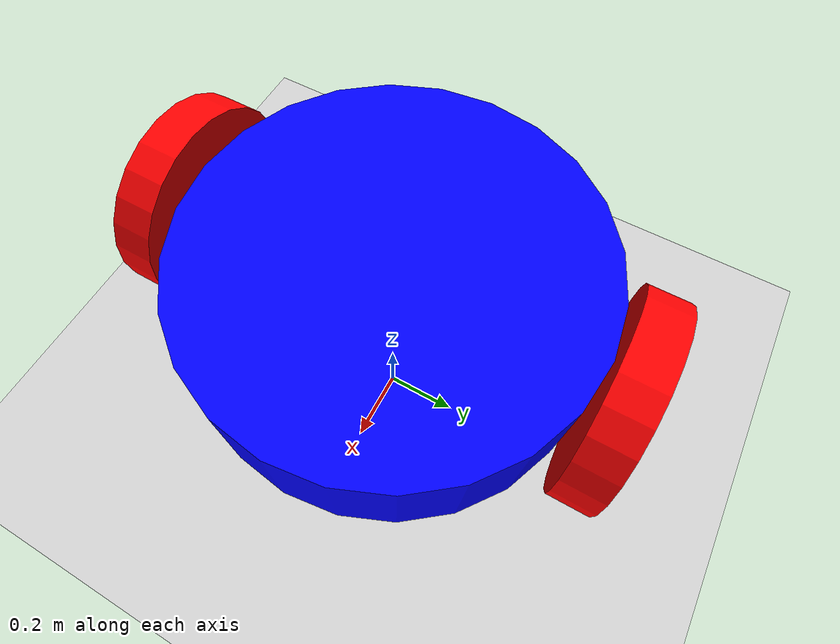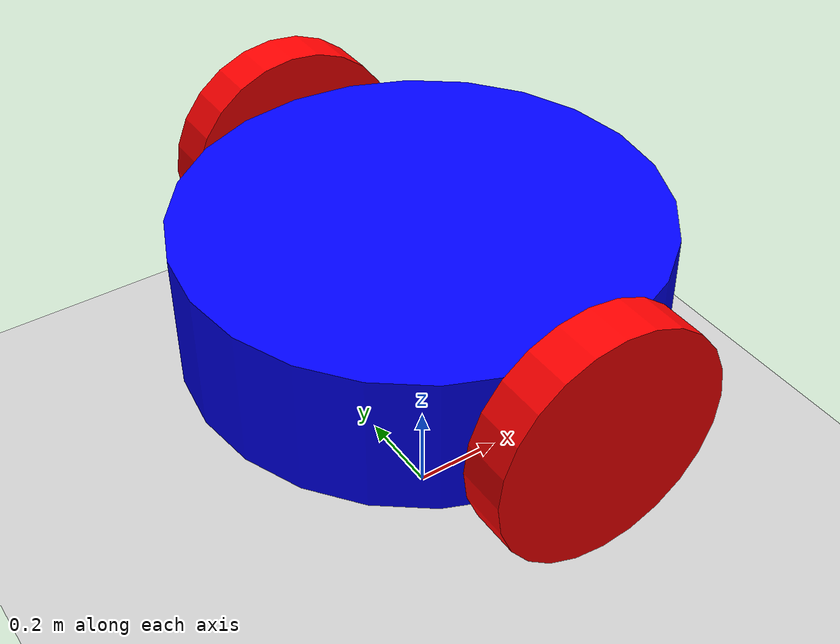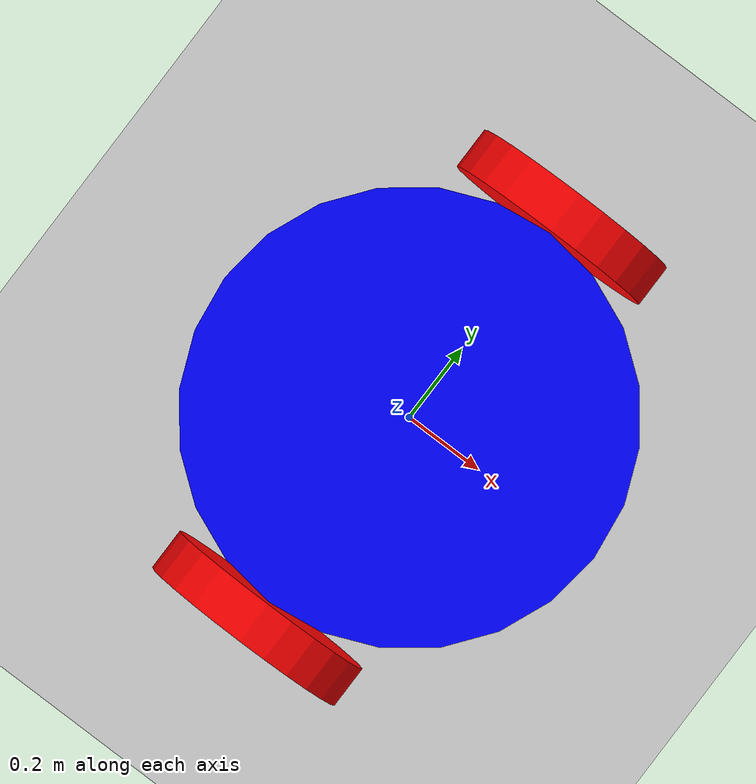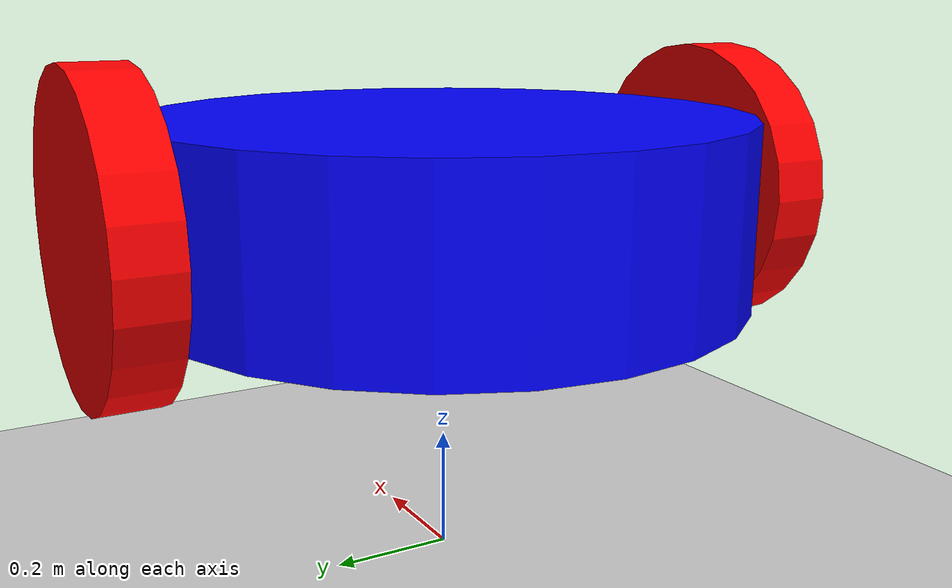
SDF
<?xml version="1.0" ?>

<sdf version='1.10'>
  <world name='car_world'>
    <physics name='1ms' type='ignored'>
      <max_step_size>0.001</max_step_size>
      <real_time_factor>1</real_time_factor>
      <real_time_update_rate>1000</real_time_update_rate>
    </physics>
    <plugin name='gz::sim::systems::Physics' filename='gz-sim-physics-system'/>
    <plugin name='gz::sim::systems::UserCommands' filename='gz-sim-user-commands-system'/>
    <plugin name='gz::sim::systems::SceneBroadcaster' filename='gz-sim-scene-broadcaster-system'/>
    <gravity>0 0 -9.8000000000000007</gravity>
    <magnetic_field>5.5644999999999998e-06 2.2875799999999999e-05 -4.2388400000000002e-05</magnetic_field>
    <atmosphere type='adiabatic'/>
    <scene>
      <ambient>0.400000006 0.400000006 0.400000006 1</ambient>
      <background>0.699999988 0.699999988 0.699999988 1</background>
      <shadows>true</shadows>
    </scene>
    <model name='ground_plane'>
      <static>true</static>
      <link name='link'>
        <collision name='collision'>
          <geometry>
            <plane>
              <normal>0 0 1</normal>
              <size>1 1</size>
            </plane>
          </geometry>
          <surface>
            <friction>
              <ode/>
            </friction>
            <bounce/>
            <contact/>
          </surface>
        </collision>
        <visual name='visual'>
          <geometry>
            <plane>
              <normal>0 0 1</normal>
              <size>100 100</size>
            </plane>
          </geometry>
          <material>
            <ambient>0.800000012 0.800000012 0.800000012 1</ambient>
            <diffuse>0.800000012 0.800000012 0.800000012 1</diffuse>
            <specular>0.800000012 0.800000012 0.800000012 1</specular>
          </material>
        </visual>
        <pose>0 0 0 0 0 0</pose>
        <inertial>
          <pose>0 0 0 0 0 0</pose>
          <mass>1</mass>
          <inertia>
            <ixx>1</ixx>
            <ixy>0</ixy>
            <ixz>0</ixz>
            <iyy>1</iyy>
            <iyz>0</iyz>
            <izz>1</izz>
          </inertia>
        </inertial>
        <enable_wind>false</enable_wind>
      </link>
      <pose>0 0 0 0 0 0</pose>
      <self_collide>false</self_collide>
    </model>
    <model name='MTracker' canonical_link='chassis'>
      <pose>0 0 0 0 0 0</pose>
      <link name='chassis'>
        <pose>0 0 0.59999999999999998 0 0 0</pose>
        <inertial>
          <mass>1.14395</mass>
          <inertia>
            <ixx>0.095328999999999997</ixx>
            <ixy>0</ixy>
            <ixz>0</ixz>
            <iyy>0.38131700000000002</iyy>
            <iyz>0</iyz>
            <izz>0.47664600000000001</izz>
          </inertia>
          <pose>0 0 0 0 0 0</pose>
        </inertial>
        <visual name='visual'>
          <geometry>
            <cylinder>
              <radius>0.5</radius>
              <length>0.29999999999999999</length>
            </cylinder>
          </geometry>
          <material>
            <ambient>0 0 1 1</ambient>
            <diffuse>0 0 1 1</diffuse>
            <specular>0 0 1 1</specular>
          </material>
        </visual>
        <collision name='collision'>
          <geometry>
            <box>
              <size>2 1 0.5</size>
            </box>
          </geometry>
          <surface>
            <friction>
              <ode/>
            </friction>
            <bounce/>
            <contact/>
          </surface>
        </collision>
        <enable_wind>false</enable_wind>
        <sensor name="camera_sensor" type="camera">
  		<pose>0 0 0.7 0 0 0</pose> <!-- Pozycja kamery względem chassis -->
  		<camera>
    		<horizontal_fov>1.3962634</horizontal_fov> <!-- 80 stopni -->
    		<image>
      		  <width>640</width>
      		  <height>480</height>
      		  <format>R8G8B8</format>
    		</image>
    	<clip>
      	<near>0.1</near>
      	<far>100</far>
    	</clip>
  	</camera>
  	<update_rate>30</update_rate>
  	<always_on>true</always_on>
  	<visualize>true</visualize>
      </sensor>
      </link>
      <link name='left_wheel'>
        <pose>0 0.55000000000000004 0.59999999999999998 -1.5706999999999995 0 0</pose>
        <inertial>
          <mass>1</mass>
          <inertia>
            <ixx>0.043333000000000003</ixx>
            <ixy>0</ixy>
            <ixz>0</ixz>
            <iyy>0.043333000000000003</iyy>
            <iyz>0</iyz>
            <izz>0.080000000000000002</izz>
          </inertia>
          <pose>0 0 0 0 0 0</pose>
        </inertial>
        <visual name='visual'>
          <geometry>
            <cylinder>
              <radius>0.25</radius>
              <length>0.10000000000000001</length>
            </cylinder>
          </geometry>
          <material>
            <ambient>1 0 0 1</ambient>
            <diffuse>1 0 0 1</diffuse>
            <specular>1 0 0 1</specular>
          </material>
        </visual>
        <collision name='collision'>
          <geometry>
            <cylinder>
              <radius>0.25</radius>
              <length>0.10000000000000001</length>
            </cylinder>
          </geometry>
          <surface>
            <friction>
              <ode/>
            </friction>
            <bounce/>
            <contact/>
          </surface>
        </collision>
        <enable_wind>false</enable_wind>
      </link>
      <link name='right_wheel'>
        <pose>0 -0.55000000000000004 0.59999999999999998 -1.5706999999999995 0 0</pose>
        <inertial>
          <mass>1</mass>
          <inertia>
            <ixx>0.043333000000000003</ixx>
            <ixy>0</ixy>
            <ixz>0</ixz>
            <iyy>0.043333000000000003</iyy>
            <iyz>0</iyz>
            <izz>0.080000000000000002</izz>
          </inertia>
          <pose>0 0 0 0 0 0</pose>
        </inertial>
        <visual name='visual'>
          <geometry>
            <cylinder>
              <radius>0.25</radius>
              <length>0.10000000000000001</length>
            </cylinder>
          </geometry>
          <material>
            <ambient>1 0 0 1</ambient>
            <diffuse>1 0 0 1</diffuse>
            <specular>1 0 0 1</specular>
          </material>
        </visual>
        <collision name='collision'>
          <geometry>
            <cylinder>
              <radius>0.25</radius>
              <length>0.10000000000000001</length>
            </cylinder>
          </geometry>
          <surface>
            <friction>
              <ode/>
            </friction>
            <bounce/>
            <contact/>
          </surface>
        </collision>
        <enable_wind>false</enable_wind>
      </link>
      <frame name='caster_frame' attached_to='chassis'>
        <pose>0.80000000000000004 0 -0.20000000000000001 0 0 0</pose>
      </frame>
      <joint name='left_wheel_joint' type='revolute'>
        <pose>0 0 -1.1102230246251565e-16 0 0 0</pose>
        <parent>chassis</parent>
        <child>left_wheel</child>
        <axis>
          <xyz>0 9.6326794747692026e-05 0.99999999536057438</xyz>
          <limit>
            <lower>-1.7976900000000001e+308</lower>
            <upper>1.7976900000000001e+308</upper>
            <effort>inf</effort>
            <velocity>inf</velocity>
            <stiffness>100000000</stiffness>
            <dissipation>1</dissipation>
          </limit>
          <dynamics>
            <spring_reference>0</spring_reference>
            <spring_stiffness>0</spring_stiffness>
            <damping>0</damping>
            <friction>0</friction>
          </dynamics>
        </axis>
      </joint>
      <joint name='right_wheel_joint' type='revolute'>
        <pose>0 0 0 0 0 0</pose>
        <parent>chassis</parent>
        <child>right_wheel</child>
        <axis>
          <xyz>0 9.6326794747692026e-05 0.99999999536057438</xyz>
          <limit>
            <lower>-1.7976900000000001e+308</lower>
            <upper>1.7976900000000001e+308</upper>
            <effort>inf</effort>
            <velocity>inf</velocity>
            <stiffness>100000000</stiffness>
            <dissipation>1</dissipation>
          </limit>
          <dynamics>
            <spring_reference>0</spring_reference>
            <spring_stiffness>0</spring_stiffness>
            <damping>0</damping>
            <friction>0</friction>
          </dynamics>
        </axis>
      </joint>

     <plugin filename="ignition-gazebo-diff-drive-system"
        name="ignition::gazebo::systems::DiffDrive">
        <left_joint>left_wheel_joint</left_joint>
        <right_joint>right_wheel_joint</right_joint>
        <wheel_separation>2.4</wheel_separation>
        <wheel_radius>0.6</wheel_radius>
        <odom_publish_frequency>1</odom_publish_frequency>
        <max_linear_acceleration>1</max_linear_acceleration>
        <min_linear_acceleration>-1</min_linear_acceleration>
        <max_angular_acceleration>2</max_angular_acceleration>
        <min_angular_acceleration>-2</min_angular_acceleration>
        <max_linear_velocity>2</max_linear_velocity>
        <min_linear_velocity>2</min_linear_velocity>
        <max_angular_velocity>1</max_angular_velocity>
        <min_angular_velocity>-1</min_angular_velocity>
     </plugin>
      <static>false</static>
      <self_collide>false</self_collide>
    </model>
    <light name='sun' type='directional'>
      <pose>0 0 10 0 0 0</pose>
      <cast_shadows>true</cast_shadows>
      <intensity>1</intensity>
      <direction>-0.5 0.10000000000000001 -0.90000000000000002</direction>
      <diffuse>0.800000012 0.800000012 0.800000012 1</diffuse>
      <specular>0.200000003 0.200000003 0.200000003 1</specular>
      <attenuation>
        <range>1000</range>
        <linear>0.01</linear>
        <constant>0.90000000000000002</constant>
        <quadratic>0.001</quadratic>
      </attenuation>
      <spot>
        <inner_angle>0</inner_angle>
        <outer_angle>0</outer_angle>
        <falloff>0</falloff>
      </spot>
    </light>
  </world>
</sdf>
